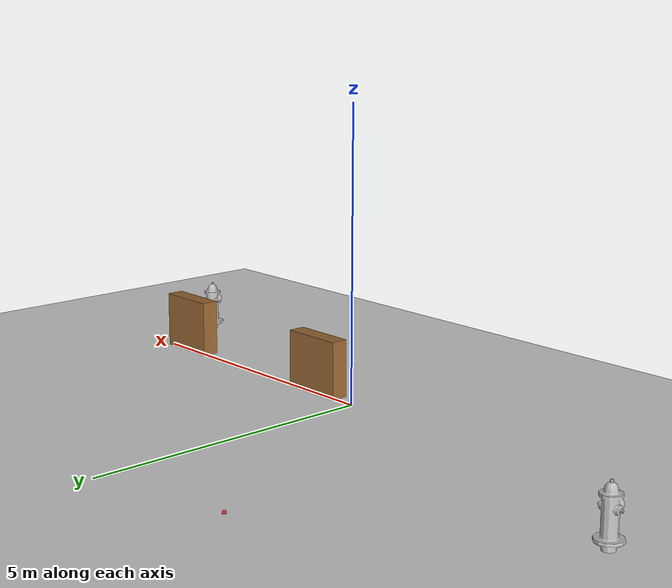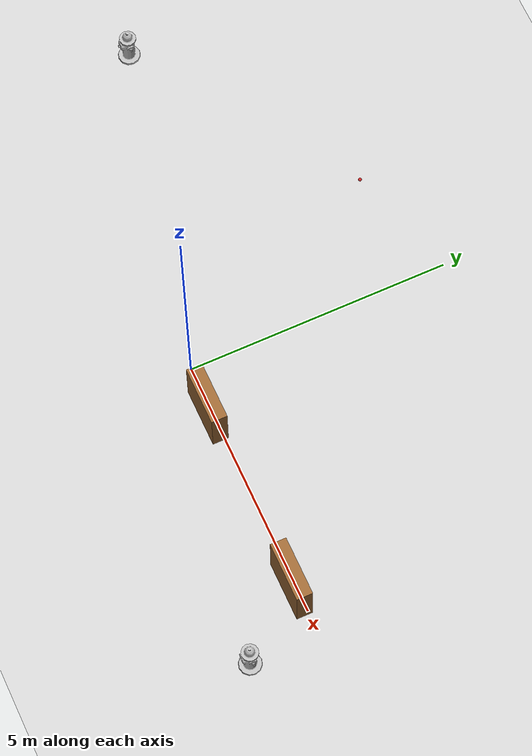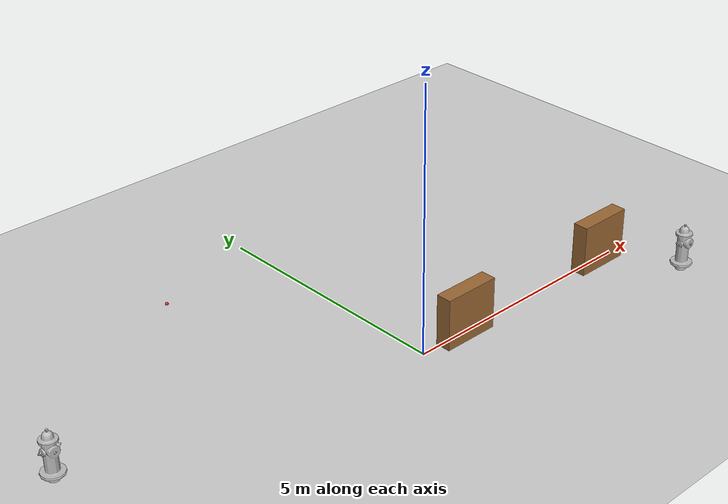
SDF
<sdf version="1.6">
 <world name="object_house">
  <include><uri>model://ground_plane</uri></include>
  <include><uri>model://sun</uri></include>
  <scene><ambient>0.9 0.9 0.9 1</ambient><background>0.8 0.8 0.85 1</background><shadows>false</shadows></scene>
  <physics type="ode">
   <real_time_update_rate>1000.0</real_time_update_rate>
   <max_step_size>0.001</max_step_size>
   <real_time_factor>1</real_time_factor>
  </physics>
  <model name="front_door_plug">
   <static>true</static>
   <pose>0.94 -0.08 0.5 0 0 0</pose>
   <link name="plug">
    <collision name="c"><geometry><box><size>1.1 0.3 1.0</size></box></geometry></collision>
    <visual name="v">
     <geometry><box><size>1.1 0.3 1.0</size></box></geometry>
     <material><ambient>0.6 0.4 0.2 1</ambient><diffuse>0.6 0.4 0.2 1</diffuse></material>
    </visual>
   </link>
  </model>
  <model name="side_gap_plug">
   <static>true</static>
   <pose>4.51 -0.08 0.5 0 0 0</pose>
   <link name="plug">
    <collision name="c"><geometry><box><size>1.1 0.3 1.0</size></box></geometry></collision>
    <visual name="v">
     <geometry><box><size>1.1 0.3 1.0</size></box></geometry>
     <material><ambient>0.6 0.4 0.2 1</ambient><diffuse>0.6 0.4 0.2 1</diffuse></material>
    </visual>
   </link>
  </model>
  <model name="target_fire_hydrant_1">
   <static>true</static>
   <pose>-6.3 1.5 0 0 0 0</pose>
   <include><uri>model://fire_hydrant</uri></include>
  </model>
  <model name="target_ball_1">
   <static>true</static>
   <pose>-2.2 4.35 0 0 0 0</pose>
   <include><uri>model://robocup_spl_ball</uri></include>
  </model>
  <model name="target_fire_hydrant_2">
   <static>true</static>
   <pose>5.5 -1.3 0 0 0 0</pose>
   <include><uri>model://fire_hydrant</uri></include>
  </model>
 </world>
</sdf>

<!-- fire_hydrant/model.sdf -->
<sdf version="1.5">
  <model name="fire_hydrant">
    <static>true</static>
    <link name="link">
      <collision name="collision">
        <geometry>
          <mesh>
            <uri>file://isr-testbed/fire_hydrant/meshes/fire_hydrant.dae</uri>
          </mesh>
        </geometry>
      </collision>
      <visual name="visual">
        <geometry>
          <mesh>
            <uri>file://isr-testbed/fire_hydrant/meshes/fire_hydrant.dae</uri>
          </mesh>
        </geometry>
      </visual>
    </link>
  </model>
</sdf>

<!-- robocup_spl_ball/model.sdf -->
<sdf version="1.5">
  <model name="robocup_spl_ball">
    <static>false</static>
    <link name="ball">
      <inertial>
        <mass>0.0056</mass>
        <!-- inertia based on solid sphere 2/5 mr^2 -->
        <inertia>
          <ixx>2.37e-6</ixx>
          <iyy>2.37e-6</iyy>
          <izz>2.37e-6</izz>
          <ixy>0</ixy>
          <ixz>0</ixz>
          <iyz>0</iyz>
        </inertia>
      </inertial>
      <collision name="collision">
        <geometry>
          <sphere>
            <radius>0.0325</radius>
          </sphere>
        </geometry>
      </collision>
      <visual name="visual">
        <geometry>
          <sphere>
            <radius>0.0325</radius>
          </sphere>
        </geometry>
        <material>
          <script>
            <uri>file://media/materials/scripts/gazebo.material</uri>
            <name>Gazebo/RedBright</name>
          </script>
        </material>
      </visual>
    </link>
  </model>
</sdf>
